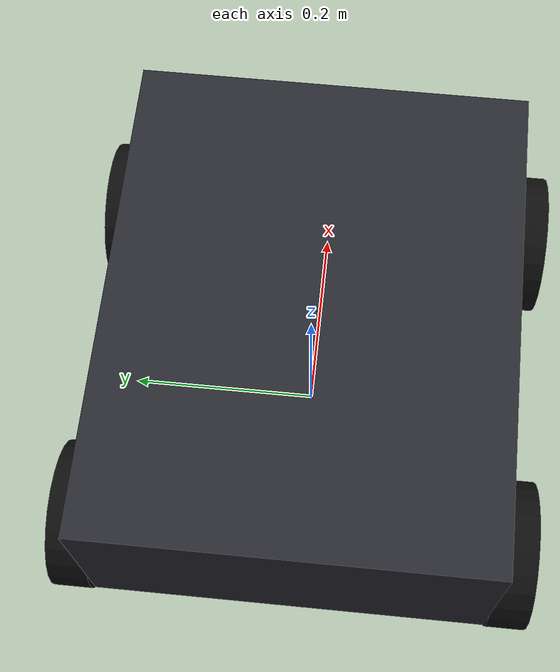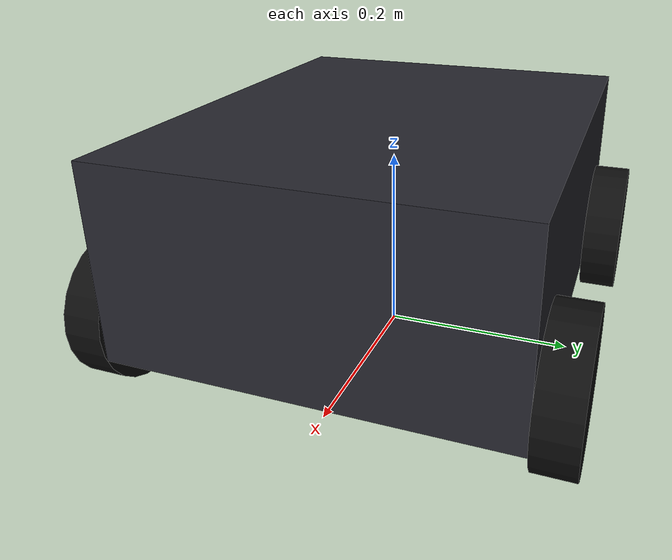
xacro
<?xml version="1.0"?>
<robot name="skid_steer_bot"
       xmlns:xacro="http://www.ros.org/wiki/xacro">

  <xacro:include filename="robot_base.xacro"/>
  <xacro:include filename="robot_control.xacro"/>
  <xacro:include filename="robot_sim.xacro"/>
  <xacro:include filename="robot_sensors.xacro"/>

  <xacro:base/>
  <xacro:control/>
  <xacro:sim/>
  <xacro:sensors/>

</robot>

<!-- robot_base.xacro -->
<robot xmlns:xacro="http://www.ros.org/wiki/xacro">

<xacro:macro name="base">

  <!-- ================= PROPERTIES ================= -->
  <xacro:property name="base_length" value="0.5"/>
  <xacro:property name="base_width" value="0.4"/>
  <xacro:property name="base_height" value="0.2"/>

  <xacro:property name="wheel_radius" value="0.075"/>
  <xacro:property name="wheel_width" value="0.04"/>

  <xacro:property name="wheel_x_offset" value="0.18"/>
  <xacro:property name="wheel_y_offset" value="0.22"/>

    <!-- ================= BASE FOOTPRINT ================= -->
<link name="base_footprint"/>

<joint name="base_footprint_joint" type="fixed">
  <parent link="base_footprint"/>
  <child link="base_link"/>
  <origin xyz="0 0 0" rpy="0 0 0"/>
</joint>
  <!-- ================= BASE LINK ================= -->
  <link name="base_link">
    <visual>
      <geometry>
        <box size="${base_length} ${base_width} ${base_height}"/>
      </geometry>
      <origin xyz="0 0 ${base_height/2 + 0.05}"/>
      <material name="body_color">
        <color rgba="0.15 0.15 0.18 1"/>
      </material>
    </visual>

    <collision>
      <geometry>
        <box size="${base_length} ${base_width} ${base_height}"/>
      </geometry>
      <origin xyz="0 0 ${base_height/2 + 0.05}"/>
    </collision>

    <inertial>
      <mass value="10.0"/>
      <origin xyz="0 0 ${base_height/2 + 0.05}"/>
      <inertia
        ixx="0.2"
        iyy="0.2"
        izz="0.2"
        ixy="0" ixz="0" iyz="0"/>
    </inertial>
  </link>

  <gazebo reference="base_link">
    <self_collide>false</self_collide>
  </gazebo>

  <!-- ================= IMU LINK ================= -->
  <link name="imu_link">
    <origin xyz="0 0 0.15" rpy="0 0 0"/>
  </link>

  <joint name="imu_joint" type="fixed">
    <parent link="base_link"/>
    <child link="imu_link"/>
    <origin xyz="0 0 0.15"/>
  </joint>

  <!-- ================= GPS LINK ================= -->
  <link name="gps_link">
    <origin xyz="0 0 0.1" rpy="0 0 0"/>
  </link>

  <joint name="gps_joint" type="fixed">
    <parent link="base_link"/>
    <child link="gps_link"/>
    <origin xyz="0 0 0.1"/>
  </joint>

  <!-- ================= LIDAR LINK ================= -->
  <link name="lidar_link">
    <origin xyz="0.2 0 0.15" rpy="0 0 0"/>
  </link>

  <joint name="lidar_joint" type="fixed">
    <parent link="base_link"/>
    <child link="lidar_link"/>
    <origin xyz="0.2 0 0.15"/>
  </joint>

  <!-- ================= CAMERA LINK ================= -->
  <link name="camera_link">
    <origin xyz="0.15 0 0.12" rpy="0 0 0"/>
  </link>

  <joint name="camera_joint" type="fixed">
    <parent link="base_link"/>
    <child link="camera_link"/>
    <origin xyz="0.15 0 0.12"/>
  </joint>

  <!-- ================= WHEEL MACRO ================= -->
  <xacro:macro name="wheel" params="name x y">

    <link name="${name}_link">
      <visual>
        <origin rpy="1.5708 0 0"/>
        <geometry>
          <cylinder radius="${wheel_radius}" length="${wheel_width}"/>
        </geometry>
        <material name="black">
          <color rgba="0.05 0.05 0.05 1"/>
        </material>
      </visual>

      <collision>
        <origin rpy="1.5708 0 0"/>
        <geometry>
          <cylinder radius="${wheel_radius}" length="${wheel_width}"/>
        </geometry>
      </collision>

      <inertial>
        <mass value="1.0"/>
        <origin xyz="0 0 0"/>
        <inertia
          ixx="0.01"
          iyy="0.01"
          izz="0.005"
          ixy="0" ixz="0" iyz="0"/>
      </inertial>
    </link>

    <joint name="${name}_joint" type="continuous">
      <parent link="base_link"/>
      <child link="${name}_link"/>
      <origin xyz="${x} ${y} ${wheel_radius}"/>
      <axis xyz="0 1 0"/>
    </joint>

  </xacro:macro>

  <!-- ================= 4 WHEELS ================= -->

  <xacro:wheel name="front_left_wheel"
               x="${wheel_x_offset}"
               y="${wheel_y_offset}"/>

  <xacro:wheel name="rear_left_wheel"
               x="-${wheel_x_offset}"
               y="${wheel_y_offset}"/>

  <xacro:wheel name="front_right_wheel"
               x="${wheel_x_offset}"
               y="-${wheel_y_offset}"/>

  <xacro:wheel name="rear_right_wheel"
               x="-${wheel_x_offset}"
               y="-${wheel_y_offset}"/>

</xacro:macro>

</robot>
